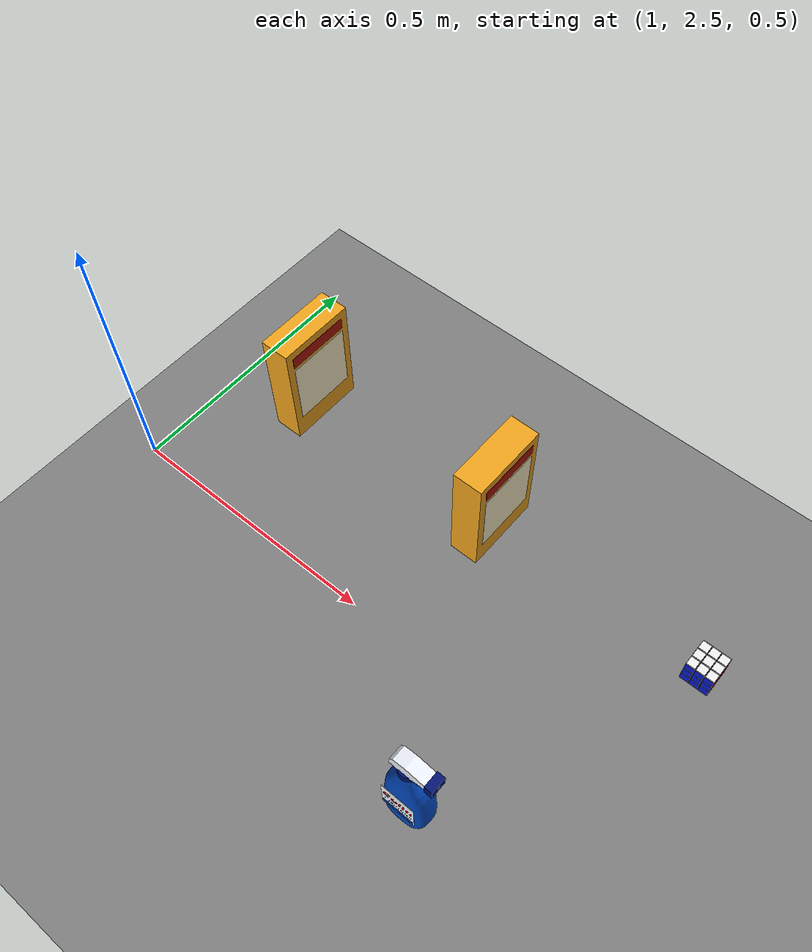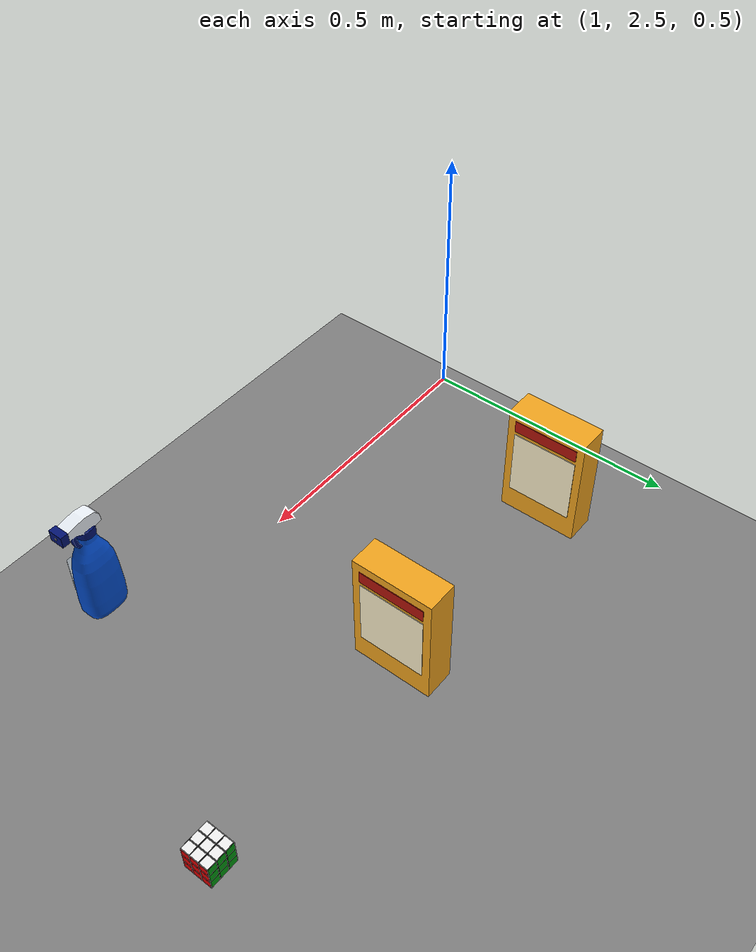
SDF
<sdf version="1.4">
 <world name="default">
  <scene>
   <ambient>0.5 0.5 0.5 1</ambient>
   <shadows>0</shadows>
   <grid>0</grid>
   <background>0.7 0.7 0.7 1</background>
  </scene>
  <plugin filename="gz-sim-physics-system" name="gz::sim::systems::Physics"/>
  <plugin filename="gz-sim-user-commands-system" name="gz::sim::systems::UserCommands"/>
  <plugin filename="gz-sim-scene-broadcaster-system" name="gz::sim::systems::SceneBroadcaster"/>
  <plugin filename="gz-sim-sensors-system" name="gz::sim::systems::Sensors"/>
  <plugin filename="gz-sim-imu-system" name="gz::sim::systems::Imu"/>
  <plugin filename="ignition-gazebo-forcetorque-system" name="ignition::gazebo::systems::ForceTorque"/>
  <gravity>0 0 -9.8</gravity>
  <physics name="1ms" type="ignored">
   <max_step_size>0.005</max_step_size>
   <real_time_factor>1.0</real_time_factor>
  </physics>
  <model name="gplane">
   <link name="body">
    <pose>5.0375 6.59 0 0 -0 0</pose>
    <collision name="gplane_coll">
     <geometry><plane><normal>0 0 1</normal><size>10.075 13.18</size></plane></geometry>
     <surface><contact><ode><kp>1e+06</kp><kd>1</kd></ode></contact></surface>
     <laser_retro>2000</laser_retro>
    </collision>
    <visual name="gplane_vis">
     <geometry><plane><normal>0 0 1</normal><size>10.075 13.18</size></plane></geometry>
     <material>
      <name>carpet</name>
      <ambient>1 1 1 1</ambient>
      <diffuse>0.5 0.5 0.5 1.0</diffuse>
      <specular>0 0 0 1.0</specular>
      <shininess>12.5</shininess>
      <pbr>
       <metal>
        <albedo_map>model://base_materials/carpet/textures/carpet01.png</albedo_map>
        <max_anisotropy>16</max_anisotropy>
        <scale>0.1 0.1</scale>
       </metal>
      </pbr>
     </material>
     <cast_shadows>0</cast_shadows>
    </visual>
    <velocity_decay><linear>0</linear><angular>0</angular></velocity_decay>
   </link>
   <static>1</static>
  </model>
  <light name="inner_point_white1" type="point">
   <pose>4 5 4 0 0 0</pose>
   <diffuse>0.2 0.2 0.2 1</diffuse>
   <specular>0.1 0.1 0.1 1</specular>
   <attenuation>
    <range>20</range>
    <linear>0.1</linear>
    <constant>0.2</constant>
    <quadratic>0</quadratic>
   </attenuation>
   <cast_shadows>0</cast_shadows>
   <direction>0 0 -1</direction>
  </light>
  <light name="inner_point_white2" type="point">
   <pose>4 10 4 0 0 0</pose>
   <diffuse>0.2 0.2 0.2 1</diffuse>
   <specular>0.1 0.1 0.1 1</specular>
   <attenuation>
    <range>20</range>
    <linear>0.1</linear>
    <constant>0.2</constant>
    <quadratic>0</quadratic>
   </attenuation>
   <cast_shadows>0</cast_shadows>
   <direction>0 0 -1</direction>
  </light>
  <light name="inner_point_white3" type="point">
   <pose>8 5 4 0 0 0</pose>
   <diffuse>0.2 0.2 0.2 1</diffuse>
   <specular>0.1 0.1 0.1 1</specular>
   <attenuation>
    <range>20</range>
    <linear>0.1</linear>
    <constant>0.2</constant>
    <quadratic>0</quadratic>
   </attenuation>
   <cast_shadows>0</cast_shadows>
   <direction>0 0 -1</direction>
  </light>
  <light name="inner_point_white4" type="point">
   <pose>8 10 4 0 0 0</pose>
   <diffuse>0.2 0.2 0.2 1</diffuse>
   <specular>0.1 0.1 0.1 1</specular>
   <attenuation>
    <range>20</range>
    <linear>0.1</linear>
    <constant>0.2</constant>
    <quadratic>0</quadratic>
   </attenuation>
   <cast_shadows>0</cast_shadows>
   <direction>0 0 -1</direction>
  </light>
  <include>
   <static>false</static>
   <name>demo_cereal_box_1</name>
   <pose>1.1 2.82 0.522 0 0 0</pose>
   <uri>model://cereal_box</uri>
  </include>
  <include>
   <static>false</static>
   <name>demo_cereal_box_2</name>
   <pose>1.55 2.82 0.522 0 0 0</pose>
   <uri>model://cereal_box</uri>
  </include>
  <include>
   <static>false</static>
   <name>demo_rubiks_cube</name>
   <pose>2.02 2.82 0.4305 0 0 0</pose>
   <uri>model://rubiks_cube</uri>
  </include>
  <include>
   <name>demo_spray_bottle</name>
   <uri>model://spray_bottle</uri>
   <pose>1.78 2.32 0.402 0 0 0</pose>
   <static>false</static>
  </include>
 </world>
</sdf>

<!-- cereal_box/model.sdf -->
<sdf version="1.7">
  <model name="cereal_box">
    <static>false</static>
    <link name="box">
      <inertial>
        <mass>0.35</mass>
        <inertia><ixx>0.002426667</ixx><iyy>0.001785</iyy><izz>0.000851667</izz><ixy>0</ixy><ixz>0</ixz><iyz>0</iyz></inertia>
      </inertial>
      <collision name="carton_collision">
        <geometry><box><size>0.06 0.16 0.24</size></box></geometry>
        <surface><friction><ode><mu>0.6</mu><mu2>0.6</mu2></ode></friction></surface>
      </collision>
      <visual name="carton">
        <geometry><box><size>0.06 0.16 0.24</size></box></geometry>
        <material><ambient>0.9 0.55 0.08 1</ambient><diffuse>0.95 0.65 0.12 1</diffuse></material>
      </visual>
      <visual name="front_label">
        <pose>0.0306 0 0 0 0 0</pose>
        <geometry><box><size>0.001 0.13 0.14</size></box></geometry>
        <material><ambient>0.95 0.9 0.72 1</ambient><diffuse>1 0.95 0.8 1</diffuse></material>
      </visual>
      <visual name="front_band">
        <pose>0.0306 0 0.09 0 0 0</pose>
        <geometry><box><size>0.001 0.13 0.025</size></box></geometry>
        <material><ambient>0.5 0.06 0.03 1</ambient><diffuse>0.7 0.08 0.04 1</diffuse></material>
      </visual>
    </link>
  </model>
</sdf>

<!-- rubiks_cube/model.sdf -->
<sdf version="1.7">
  <model name="rubiks_cube">
    <static>false</static>
    <link name="cube">
      <inertial>
        <mass>0.10</mass>
        <inertia>
          <ixx>0.00005415</ixx>
          <iyy>0.00005415</iyy>
          <izz>0.00005415</izz>
          <ixy>0</ixy>
          <ixz>0</ixz>
          <iyz>0</iyz>
        </inertia>
      </inertial>
      <collision name="cube_collision">
        <geometry>
          <box>
            <size>0.057 0.057 0.057</size>
          </box>
        </geometry>
        <surface>
          <friction>
            <ode>
              <mu>0.8</mu>
              <mu2>0.8</mu2>
            </ode>
          </friction>
        </surface>
      </collision>
      <visual name="black_body">
        <pose>0 0 0 0 0 0</pose>
        <geometry>
          <box>
            <size>0.057 0.057 0.057</size>
          </box>
        </geometry>
        <material>
          <ambient>0.018 0.018 0.018 1</ambient>
          <diffuse>0.018 0.018 0.018 1</diffuse>
        </material>
      </visual>
      <visual name="red_0_0">
        <pose>0.02855 -0.019 -0.019 0 0 0</pose>
        <geometry>
          <box>
            <size>0.0001 0.0168 0.0168</size>
          </box>
        </geometry>
        <material>
          <ambient>0.85 0.015 0.015 1</ambient>
          <diffuse>0.85 0.015 0.015 1</diffuse>
        </material>
      </visual>
      <visual name="red_0_1">
        <pose>0.02855 -0.019 0.0 0 0 0</pose>
        <geometry>
          <box>
            <size>0.0001 0.0168 0.0168</size>
          </box>
        </geometry>
        <material>
          <ambient>0.85 0.015 0.015 1</ambient>
          <diffuse>0.85 0.015 0.015 1</diffuse>
        </material>
      </visual>
      <visual name="red_0_2">
        <pose>0.02855 -0.019 0.019 0 0 0</pose>
        <geometry>
          <box>
            <size>0.0001 0.0168 0.0168</size>
          </box>
        </geometry>
        <material>
          <ambient>0.85 0.015 0.015 1</ambient>
          <diffuse>0.85 0.015 0.015 1</diffuse>
        </material>
      </visual>
      <visual name="red_1_0">
        <pose>0.02855 0.0 -0.019 0 0 0</pose>
        <geometry>
          <box>
            <size>0.0001 0.0168 0.0168</size>
          </box>
        </geometry>
        <material>
          <ambient>0.85 0.015 0.015 1</ambient>
          <diffuse>0.85 0.015 0.015 1</diffuse>
        </material>
      </visual>
      <visual name="red_1_1">
        <pose>0.02855 0.0 0.0 0 0 0</pose>
        <geometry>
          <box>
            <size>0.0001 0.0168 0.0168</size>
          </box>
        </geometry>
        <material>
          <ambient>0.85 0.015 0.015 1</ambient>
          <diffuse>0.85 0.015 0.015 1</diffuse>
        </material>
      </visual>
      <visual name="red_1_2">
        <pose>0.02855 0.0 0.019 0 0 0</pose>
        <geometry>
          <box>
            <size>0.0001 0.0168 0.0168</size>
          </box>
        </geometry>
        <material>
          <ambient>0.85 0.015 0.015 1</ambient>
          <diffuse>0.85 0.015 0.015 1</diffuse>
        </material>
      </visual>
      <visual name="red_2_0">
        <pose>0.02855 0.019 -0.019 0 0 0</pose>
        <geometry>
          <box>
            <size>0.0001 0.0168 0.0168</size>
          </box>
        </geometry>
        <material>
          <ambient>0.85 0.015 0.015 1</ambient>
          <diffuse>0.85 0.015 0.015 1</diffuse>
        </material>
      </visual>
      <visual name="red_2_1">
        <pose>0.02855 0.019 0.0 0 0 0</pose>
        <geometry>
          <box>
            <size>0.0001 0.0168 0.0168</size>
          </box>
        </geometry>
        <material>
          <ambient>0.85 0.015 0.015 1</ambient>
          <diffuse>0.85 0.015 0.015 1</diffuse>
        </material>
      </visual>
      <visual name="red_2_2">
        <pose>0.02855 0.019 0.019 0 0 0</pose>
        <geometry>
          <box>
            <size>0.0001 0.0168 0.0168</size>
          </box>
        </geometry>
        <material>
          <ambient>0.85 0.015 0.015 1</ambient>
          <diffuse>0.85 0.015 0.015 1</diffuse>
        </material>
      </visual>
      <visual name="orange_0_0">
        <pose>-0.02855 -0.019 -0.019 0 0 0</pose>
        <geometry>
          <box>
            <size>0.0001 0.0168 0.0168</size>
          </box>
        </geometry>
        <material>
          <ambient>1 0.30 0.005 1</ambient>
          <diffuse>1 0.30 0.005 1</diffuse>
        </material>
      </visual>
      <visual name="orange_0_1">
        <pose>-0.02855 -0.019 0.0 0 0 0</pose>
        <geometry>
          <box>
            <size>0.0001 0.0168 0.0168</size>
          </box>
        </geometry>
        <material>
          <ambient>1 0.30 0.005 1</ambient>
          <diffuse>1 0.30 0.005 1</diffuse>
        </material>
      </visual>
      <visual name="orange_0_2">
        <pose>-0.02855 -0.019 0.019 0 0 0</pose>
        <geometry>
          <box>
            <size>0.0001 0.0168 0.0168</size>
          </box>
        </geometry>
        <material>
          <ambient>1 0.30 0.005 1</ambient>
          <diffuse>1 0.30 0.005 1</diffuse>
        </material>
      </visual>
      <visual name="orange_1_0">
        <pose>-0.02855 0.0 -0.019 0 0 0</pose>
        <geometry>
          <box>
            <size>0.0001 0.0168 0.0168</size>
          </box>
        </geometry>
        <material>
          <ambient>1 0.30 0.005 1</ambient>
          <diffuse>1 0.30 0.005 1</diffuse>
        </material>
      </visual>
      <visual name="orange_1_1">
        <pose>-0.02855 0.0 0.0 0 0 0</pose>
        <geometry>
          <box>
            <size>0.0001 0.0168 0.0168</size>
          </box>
        </geometry>
        <material>
          <ambient>1 0.30 0.005 1</ambient>
          <diffuse>1 0.30 0.005 1</diffuse>
        </material>
      </visual>
      <visual name="orange_1_2">
        <pose>-0.02855 0.0 0.019 0 0 0</pose>
        <geometry>
          <box>
            <size>0.0001 0.0168 0.0168</size>
          </box>
        </geometry>
        <material>
          <ambient>1 0.30 0.005 1</ambient>
          <diffuse>1 0.30 0.005 1</diffuse>
        </material>
      </visual>
      <visual name="orange_2_0">
        <pose>-0.02855 0.019 -0.019 0 0 0</pose>
        <geometry>
          <box>
            <size>0.0001 0.0168 0.0168</size>
          </box>
        </geometry>
        <material>
          <ambient>1 0.30 0.005 1</ambient>
          <diffuse>1 0.30 0.005 1</diffuse>
        </material>
      </visual>
      <visual name="orange_2_1">
        <pose>-0.02855 0.019 0.0 0 0 0</pose>
        <geometry>
          <box>
            <size>0.0001 0.0168 0.0168</size>
          </box>
        </geometry>
        <material>
          <ambient>1 0.30 0.005 1</ambient>
          <diffuse>1 0.30 0.005 1</diffuse>
        </material>
      </visual>
      <visual name="orange_2_2">
        <pose>-0.02855 0.019 0.019 0 0 0</pose>
        <geometry>
          <box>
            <size>0.0001 0.0168 0.0168</size>
          </box>
        </geometry>
        <material>
          <ambient>1 0.30 0.005 1</ambient>
          <diffuse>1 0.30 0.005 1</diffuse>
        </material>
      </visual>
      <visual name="green_0_0">
        <pose>-0.019 0.02855 -0.019 0 0 0</pose>
        <geometry>
          <box>
            <size>0.0168 0.0001 0.0168</size>
          </box>
        </geometry>
        <material>
          <ambient>0.01 0.60 0.06 1</ambient>
          <diffuse>0.01 0.60 0.06 1</diffuse>
        </material>
      </visual>
      <visual name="green_0_1">
        <pose>-0.019 0.02855 0.0 0 0 0</pose>
        <geometry>
          <box>
            <size>0.0168 0.0001 0.0168</size>
          </box>
        </geometry>
        <material>
          <ambient>0.01 0.60 0.06 1</ambient>
          <diffuse>0.01 0.60 0.06 1</diffuse>
        </material>
      </visual>
      <visual name="green_0_2">
        <pose>-0.019 0.02855 0.019 0 0 0</pose>
        <geometry>
          <box>
            <size>0.0168 0.0001 0.0168</size>
          </box>
        </geometry>
        <material>
          <ambient>0.01 0.60 0.06 1</ambient>
          <diffuse>0.01 0.60 0.06 1</diffuse>
        </material>
      </visual>
      <visual name="green_1_0">
        <pose>0.0 0.02855 -0.019 0 0 0</pose>
        <geometry>
          <box>
            <size>0.0168 0.0001 0.0168</size>
          </box>
        </geometry>
        <material>
          <ambient>0.01 0.60 0.06 1</ambient>
          <diffuse>0.01 0.60 0.06 1</diffuse>
        </material>
      </visual>
      <visual name="green_1_1">
        <pose>0.0 0.02855 0.0 0 0 0</pose>
        <geometry>
          <box>
            <size>0.0168 0.0001 0.0168</size>
          </box>
        </geometry>
        <material>
          <ambient>0.01 0.60 0.06 1</ambient>
          <diffuse>0.01 0.60 0.06 1</diffuse>
        </material>
      </visual>
      <visual name="green_1_2">
        <pose>0.0 0.02855 0.019 0 0 0</pose>
        <geometry>
          <box>
            <size>0.0168 0.0001 0.0168</size>
          </box>
        </geometry>
        <material>
          <ambient>0.01 0.60 0.06 1</ambient>
          <diffuse>0.01 0.60 0.06 1</diffuse>
        </material>
      </visual>
      <visual name="green_2_0">
        <pose>0.019 0.02855 -0.019 0 0 0</pose>
        <geometry>
          <box>
            <size>0.0168 0.0001 0.0168</size>
          </box>
        </geometry>
        <material>
          <ambient>0.01 0.60 0.06 1</ambient>
          <diffuse>0.01 0.60 0.06 1</diffuse>
        </material>
      </visual>
      <visual name="green_2_1">
        <pose>0.019 0.02855 0.0 0 0 0</pose>
        <geometry>
          <box>
            <size>0.0168 0.0001 0.0168</size>
          </box>
        </geometry>
        <material>
          <ambient>0.01 0.60 0.06 1</ambient>
          <diffuse>0.01 0.60 0.06 1</diffuse>
        </material>
      </visual>
      <visual name="green_2_2">
        <pose>0.019 0.02855 0.019 0 0 0</pose>
        <geometry>
          <box>
            <size>0.0168 0.0001 0.0168</size>
          </box>
        </geometry>
        <material>
          <ambient>0.01 0.60 0.06 1</ambient>
          <diffuse>0.01 0.60 0.06 1</diffuse>
        </material>
      </visual>
      <visual name="blue_0_0">
        <pose>-0.019 -0.02855 -0.019 0 0 0</pose>
        <geometry>
          <box>
            <size>0.0168 0.0001 0.0168</size>
          </box>
        </geometry>
        <material>
          <ambient>0.015 0.10 0.85 1</ambient>
          <diffuse>0.015 0.10 0.85 1</diffuse>
        </material>
      </visual>
      <visual name="blue_0_1">
        <pose>-0.019 -0.02855 0.0 0 0 0</pose>
        <geometry>
          <box>
            <size>0.0168 0.0001 0.0168</size>
          </box>
        </geometry>
        <material>
          <ambient>0.015 0.10 0.85 1</ambient>
          <diffuse>0.015 0.10 0.85 1</diffuse>
        </material>
      </visual>
      <visual name="blue_0_2">
        <pose>-0.019 -0.02855 0.019 0 0 0</pose>
        <geometry>
          <box>
            <size>0.0168 0.0001 0.0168</size>
          </box>
        </geometry>
        <material>
          <ambient>0.015 0.10 0.85 1</ambient>
          <diffuse>0.015 0.10 0.85 1</diffuse>
        </material>
      </visual>
      <visual name="blue_1_0">
        <pose>0.0 -0.02855 -0.019 0 0 0</pose>
        <geometry>
          <box>
            <size>0.0168 0.0001 0.0168</size>
          </box>
        </geometry>
        <material>
          <ambient>0.015 0.10 0.85 1</ambient>
          <diffuse>0.015 0.10 0.85 1</diffuse>
        </material>
      </visual>
      <visual name="blue_1_1">
        <pose>0.0 -0.02855 0.0 0 0 0</pose>
        <geometry>
          <box>
            <size>0.0168 0.0001 0.0168</size>
          </box>
        </geometry>
        <material>
          <ambient>0.015 0.10 0.85 1</ambient>
          <diffuse>0.015 0.10 0.85 1</diffuse>
        </material>
      </visual>
      <visual name="blue_1_2">
        <pose>0.0 -0.02855 0.019 0 0 0</pose>
        <geometry>
          <box>
            <size>0.0168 0.0001 0.0168</size>
          </box>
        </geometry>
        <material>
          <ambient>0.015 0.10 0.85 1</ambient>
          <diffuse>0.015 0.10 0.85 1</diffuse>
        </material>
      </visual>
      <visual name="blue_2_0">
        <pose>0.019 -0.02855 -0.019 0 0 0</pose>
        <geometry>
          <box>
            <size>0.0168 0.0001 0.0168</size>
          </box>
        </geometry>
        <material>
          <ambient>0.015 0.10 0.85 1</ambient>
          <diffuse>0.015 0.10 0.85 1</diffuse>
        </material>
      </visual>
      <visual name="blue_2_1">
        <pose>0.019 -0.02855 0.0 0 0 0</pose>
        <geometry>
          <box>
            <size>0.0168 0.0001 0.0168</size>
          </box>
        </geometry>
        <material>
          <ambient>0.015 0.10 0.85 1</ambient>
          <diffuse>0.015 0.10 0.85 1</diffuse>
        </material>
      </visual>
      <visual name="blue_2_2">
        <pose>0.019 -0.02855 0.019 0 0 0</pose>
        <geometry>
          <box>
            <size>0.0168 0.0001 0.0168</size>
          </box>
        </geometry>
        <material>
          <ambient>0.015 0.10 0.85 1</ambient>
          <diffuse>0.015 0.10 0.85 1</diffuse>
        </material>
      </visual>
      <visual name="white_0_0">
        <pose>-0.019 -0.019 0.02855 0 0 0</pose>
        <geometry>
          <box>
            <size>0.0168 0.0168 0.0001</size>
          </box>
        </geometry>
        <material>
          <ambient>0.95 0.95 0.95 1</ambient>
          <diffuse>0.95 0.95 0.95 1</diffuse>
        </material>
      </visual>
      <visual name="white_0_1">
        <pose>-0.019 0.0 0.02855 0 0 0</pose>
        <geometry>
          <box>
            <size>0.0168 0.0168 0.0001</size>
          </box>
        </geometry>
        <material>
          <ambient>0.95 0.95 0.95 1</ambient>
          <diffuse>0.95 0.95 0.95 1</diffuse>
        </material>
      </visual>
      <visual name="white_0_2">
        <pose>-0.019 0.019 0.02855 0 0 0</pose>
        <geometry>
          <box>
            <size>0.0168 0.0168 0.0001</size>
          </box>
        </geometry>
        <material>
          <ambient>0.95 0.95 0.95 1</ambient>
          <diffuse>0.95 0.95 0.95 1</diffuse>
        </material>
      </visual>
      <visual name="white_1_0">
        <pose>0.0 -0.019 0.02855 0 0 0</pose>
        <geometry>
          <box>
            <size>0.0168 0.0168 0.0001</size>
          </box>
        </geometry>
        <material>
          <ambient>0.95 0.95 0.95 1</ambient>
          <diffuse>0.95 0.95 0.95 1</diffuse>
        </material>
      </visual>
      <visual name="white_1_1">
        <pose>0.0 0.0 0.02855 0 0 0</pose>
        <geometry>
          <box>
            <size>0.0168 0.0168 0.0001</size>
          </box>
        </geometry>
        <material>
          <ambient>0.95 0.95 0.95 1</ambient>
          <diffuse>0.95 0.95 0.95 1</diffuse>
        </material>
      </visual>
      <visual name="white_1_2">
        <pose>0.0 0.019 0.02855 0 0 0</pose>
        <geometry>
          <box>
            <size>0.0168 0.0168 0.0001</size>
          </box>
        </geometry>
        <material>
          <ambient>0.95 0.95 0.95 1</ambient>
          <diffuse>0.95 0.95 0.95 1</diffuse>
        </material>
      </visual>
      <visual name="white_2_0">
        <pose>0.019 -0.019 0.02855 0 0 0</pose>
        <geometry>
          <box>
            <size>0.0168 0.0168 0.0001</size>
          </box>
        </geometry>
        <material>
          <ambient>0.95 0.95 0.95 1</ambient>
          <diffuse>0.95 0.95 0.95 1</diffuse>
        </material>
      </visual>
      <visual name="white_2_1">
        <pose>0.019 0.0 0.02855 0 0 0</pose>
        <geometry>
          <box>
            <size>0.0168 0.0168 0.0001</size>
          </box>
        </geometry>
        <material>
          <ambient>0.95 0.95 0.95 1</ambient>
          <diffuse>0.95 0.95 0.95 1</diffuse>
        </material>
      </visual>
      <visual name="white_2_2">
        <pose>0.019 0.019 0.02855 0 0 0</pose>
        <geometry>
          <box>
            <size>0.0168 0.0168 0.0001</size>
          </box>
        </geometry>
        <material>
          <ambient>0.95 0.95 0.95 1</ambient>
          <diffuse>0.95 0.95 0.95 1</diffuse>
        </material>
      </visual>
      <visual name="yellow_0_0">
        <pose>-0.019 -0.019 -0.02855 0 0 0</pose>
        <geometry>
          <box>
            <size>0.0168 0.0168 0.0001</size>
          </box>
        </geometry>
        <material>
          <ambient>1 0.85 0.005 1</ambient>
          <diffuse>1 0.85 0.005 1</diffuse>
        </material>
      </visual>
      <visual name="yellow_0_1">
        <pose>-0.019 0.0 -0.02855 0 0 0</pose>
        <geometry>
          <box>
            <size>0.0168 0.0168 0.0001</size>
          </box>
        </geometry>
        <material>
          <ambient>1 0.85 0.005 1</ambient>
          <diffuse>1 0.85 0.005 1</diffuse>
        </material>
      </visual>
      <visual name="yellow_0_2">
        <pose>-0.019 0.019 -0.02855 0 0 0</pose>
        <geometry>
          <box>
            <size>0.0168 0.0168 0.0001</size>
          </box>
        </geometry>
        <material>
          <ambient>1 0.85 0.005 1</ambient>
          <diffuse>1 0.85 0.005 1</diffuse>
        </material>
      </visual>
      <visual name="yellow_1_0">
        <pose>0.0 -0.019 -0.02855 0 0 0</pose>
        <geometry>
          <box>
            <size>0.0168 0.0168 0.0001</size>
          </box>
        </geometry>
        <material>
          <ambient>1 0.85 0.005 1</ambient>
          <diffuse>1 0.85 0.005 1</diffuse>
        </material>
      </visual>
      <visual name="yellow_1_1">
        <pose>0.0 0.0 -0.02855 0 0 0</pose>
        <geometry>
          <box>
            <size>0.0168 0.0168 0.0001</size>
          </box>
        </geometry>
        <material>
          <ambient>1 0.85 0.005 1</ambient>
          <diffuse>1 0.85 0.005 1</diffuse>
        </material>
      </visual>
      <visual name="yellow_1_2">
        <pose>0.0 0.019 -0.02855 0 0 0</pose>
        <geometry>
          <box>
            <size>0.0168 0.0168 0.0001</size>
          </box>
        </geometry>
        <material>
          <ambient>1 0.85 0.005 1</ambient>
          <diffuse>1 0.85 0.005 1</diffuse>
        </material>
      </visual>
      <visual name="yellow_2_0">
        <pose>0.019 -0.019 -0.02855 0 0 0</pose>
        <geometry>
          <box>
            <size>0.0168 0.0168 0.0001</size>
          </box>
        </geometry>
        <material>
          <ambient>1 0.85 0.005 1</ambient>
          <diffuse>1 0.85 0.005 1</diffuse>
        </material>
      </visual>
      <visual name="yellow_2_1">
        <pose>0.019 0.0 -0.02855 0 0 0</pose>
        <geometry>
          <box>
            <size>0.0168 0.0168 0.0001</size>
          </box>
        </geometry>
        <material>
          <ambient>1 0.85 0.005 1</ambient>
          <diffuse>1 0.85 0.005 1</diffuse>
        </material>
      </visual>
      <visual name="yellow_2_2">
        <pose>0.019 0.019 -0.02855 0 0 0</pose>
        <geometry>
          <box>
            <size>0.0168 0.0168 0.0001</size>
          </box>
        </geometry>
        <material>
          <ambient>1 0.85 0.005 1</ambient>
          <diffuse>1 0.85 0.005 1</diffuse>
        </material>
      </visual>
    </link>
  </model>
</sdf>

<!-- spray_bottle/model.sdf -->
<sdf version="1.7">
  <model name="spray_bottle">
    <static>false</static>
    <link name="bottle">
      <inertial>
        <pose>0 0 0.095 0 0 0</pose>
        <mass>0.55</mass>
        <inertia>
          <ixx>0.0018</ixx>
          <iyy>0.002</iyy>
          <izz>0.00048</izz>
          <ixy>0</ixy>
          <ixz>0</ixz>
          <iyz>0</iyz>
        </inertia>
      </inertial>
      <visual name="blue_contoured_body">
        <pose>0 0 0 0 0 0</pose>
        <geometry>
          <mesh>
            <uri>model://spray_bottle/meshes/contoured_bottle.obj</uri>
          </mesh>
        </geometry>
        <material>
          <ambient>0.015 0.30 0.80 1</ambient>
          <diffuse>0.015 0.30 0.80 1</diffuse>
          <specular>0.4 0.4 0.4 1</specular>
        </material>
      </visual>
      <visual name="white_sprayer">
        <pose>0 0 0 0 0 0</pose>
        <geometry>
          <mesh>
            <uri>model://spray_bottle/meshes/sprayer_shell.obj</uri>
          </mesh>
        </geometry>
        <material>
          <ambient>0.93 0.95 0.98 1</ambient>
          <diffuse>0.93 0.95 0.98 1</diffuse>
          <specular>0.4 0.4 0.4 1</specular>
        </material>
      </visual>
      <visual name="blue_trigger">
        <pose>0 0 0 0 0 0</pose>
        <geometry>
          <mesh>
            <uri>model://spray_bottle/meshes/curved_trigger.obj</uri>
          </mesh>
        </geometry>
        <material>
          <ambient>0.015 0.07 0.40 1</ambient>
          <diffuse>0.015 0.07 0.40 1</diffuse>
          <specular>0.4 0.4 0.4 1</specular>
        </material>
      </visual>
      <visual name="blue_screw_cap">
        <pose>0 0 0.201 0 0 0</pose>
        <geometry>
          <cylinder>
            <radius>0.018</radius>
            <length>0.018</length>
          </cylinder>
        </geometry>
        <material>
          <ambient>0.015 0.08 0.45 1</ambient>
          <diffuse>0.015 0.08 0.45 1</diffuse>
          <specular>0.4 0.4 0.4 1</specular>
        </material>
      </visual>
      <visual name="blue_nozzle">
        <pose>.049 0 .225 0 0 0</pose>
        <geometry>
          <box>
            <size>0.015 0.03 0.023</size>
          </box>
        </geometry>
        <material>
          <ambient>0.015 0.08 0.45 1</ambient>
          <diffuse>0.015 0.08 0.45 1</diffuse>
          <specular>0.4 0.4 0.4 1</specular>
        </material>
      </visual>
      <visual name="nozzle_hole">
        <pose>.0567 0 .225 0 1.5707963 0</pose>
        <geometry>
          <cylinder>
            <radius>0.0025</radius>
            <length>0.0005</length>
          </cylinder>
        </geometry>
        <material>
          <ambient>0.01 0.015 0.025 1</ambient>
          <diffuse>0.01 0.015 0.025 1</diffuse>
          <specular>0.4 0.4 0.4 1</specular>
        </material>
      </visual>
      <visual name="white_label">
        <pose>0 -.030 .087 0 0 0</pose>
        <geometry>
          <box>
            <size>0.066 0.0004 0.082</size>
          </box>
        </geometry>
        <material>
          <ambient>0.92 0.97 1 1</ambient>
          <diffuse>0.92 0.97 1 1</diffuse>
          <specular>0.4 0.4 0.4 1</specular>
        </material>
      </visual>
      <visual name="colin_red_logo">
        <pose>0 0 0 0 0 0</pose>
        <geometry>
          <mesh>
            <uri>model://spray_bottle/meshes/colin_logo.obj</uri>
          </mesh>
        </geometry>
        <material>
          <ambient>0.90 0.015 0.035 1</ambient>
          <diffuse>0.90 0.015 0.035 1</diffuse>
          <specular>0.4 0.4 0.4 1</specular>
        </material>
      </visual>
      <visual name="label_text">
        <pose>0 0 0 0 0 0</pose>
        <geometry>
          <mesh>
            <uri>model://spray_bottle/meshes/glass_cleaner.obj</uri>
          </mesh>
        </geometry>
        <material>
          <ambient>0.01 0.11 0.36 1</ambient>
          <diffuse>0.01 0.11 0.36 1</diffuse>
          <specular>0.4 0.4 0.4 1</specular>
        </material>
      </visual>
      <visual name="label_bottom_band">
        <pose>0 -.0303 .055 0 0 0</pose>
        <geometry>
          <box>
            <size>0.062 0.0003 0.012</size>
          </box>
        </geometry>
        <material>
          <ambient>0.015 0.30 0.75 1</ambient>
          <diffuse>0.015 0.30 0.75 1</diffuse>
          <specular>0.4 0.4 0.4 1</specular>
        </material>
      </visual>
      <collision name="body">
        <pose>0 0 .068 0 0 0</pose>
        <geometry>
          <box>
            <size>0.076 0.052 0.134</size>
          </box>
        </geometry>
        <surface>
          <friction>
            <ode>
              <mu>0.7</mu>
              <mu2>0.7</mu2>
            </ode>
          </friction>
        </surface>
      </collision>
      <collision name="shoulder">
        <pose>0 0 .145 0 0 0</pose>
        <geometry>
          <box>
            <size>0.057 0.04 0.03</size>
          </box>
        </geometry>
        <surface>
          <friction>
            <ode>
              <mu>0.7</mu>
              <mu2>0.7</mu2>
            </ode>
          </friction>
        </surface>
      </collision>
      <collision name="neck">
        <pose>0 0 .178 0 0 0</pose>
        <geometry>
          <cylinder>
            <radius>0.016</radius>
            <length>0.041</length>
          </cylinder>
        </geometry>
        <surface>
          <friction>
            <ode>
              <mu>0.7</mu>
              <mu2>0.7</mu2>
            </ode>
          </friction>
        </surface>
      </collision>
      <collision name="cap">
        <pose>0 0 .201 0 0 0</pose>
        <geometry>
          <cylinder>
            <radius>0.018</radius>
            <length>0.018</length>
          </cylinder>
        </geometry>
        <surface>
          <friction>
            <ode>
              <mu>0.7</mu>
              <mu2>0.7</mu2>
            </ode>
          </friction>
        </surface>
      </collision>
      <collision name="head">
        <pose>.015 0 .224 0 0 0</pose>
        <geometry>
          <box>
            <size>0.081 0.03 0.028</size>
          </box>
        </geometry>
        <surface>
          <friction>
            <ode>
              <mu>0.7</mu>
              <mu2>0.7</mu2>
            </ode>
          </friction>
        </surface>
      </collision>
      <collision name="trigger">
        <pose>.024 0 .193 0 0 0</pose>
        <geometry>
          <box>
            <size>0.01 0.01 0.038</size>
          </box>
        </geometry>
        <surface>
          <friction>
            <ode>
              <mu>0.7</mu>
              <mu2>0.7</mu2>
            </ode>
          </friction>
        </surface>
      </collision>
    </link>
  </model>
</sdf>
